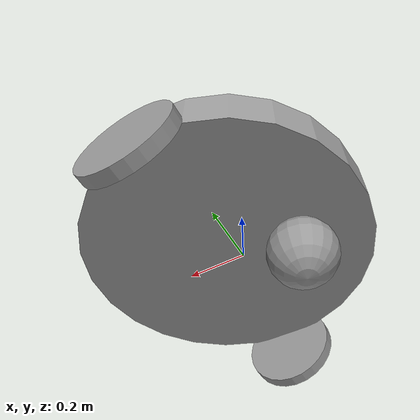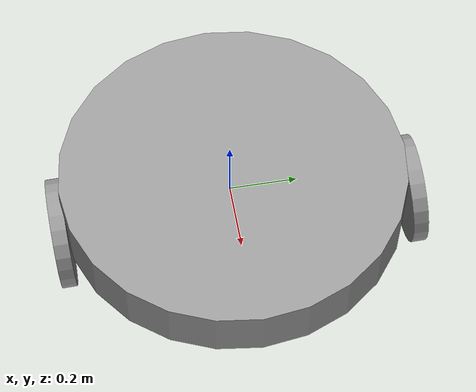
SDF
<?xml version='1.0'?>
<sdf version='1.6'>
  <model name='HumanoidRobot'>
    <link name='link_1'>
      <pose frame=''>0.063927 -0.510725 -0.011034 -1.52905 0 0</pose>
      <inertial>
        <mass>0.00453065</mass>
        <inertia>
          <ixx>2.98538e-05</ixx>
          <ixy>0</ixy>
          <ixz>0</ixz>
          <iyy>2.98538e-05</iyy>
          <iyz>0</iyz>
          <izz>5.8242e-05</izz>
        </inertia>
        <pose frame=''>0 0 0 0 -0 0</pose>
      </inertial>
      <visual name='visual'>
        <pose frame=''>0 0 0 0 -0 0</pose>
        <geometry>
          <cylinder>
            <radius>0.160417</radius>
            <length>0.0440566</length>
          </cylinder>
        </geometry>
        <material>
          <lighting>1</lighting>
          <script>
            <uri>file://media/materials/scripts/gazebo.material</uri>
            <name>Gazebo/Grey</name>
          </script>
          <ambient>0.3 0.3 0.3 1</ambient>
          <diffuse>0.7 0.7 0.7 1</diffuse>
          <specular>0.01 0.01 0.01 1</specular>
          <emissive>0 0 0 1</emissive>
        </material>
        <transparency>0</transparency>
        <cast_shadows>1</cast_shadows>
      </visual>
      <collision name='collision'>
        <laser_retro>0</laser_retro>
        <max_contacts>10</max_contacts>
        <pose frame=''>0 0 0 0 -0 0</pose>
        <geometry>
          <cylinder>
            <radius>0.160417</radius>
            <length>0.044057</length>
          </cylinder>
        </geometry>
        <surface>
          <friction>
            <ode>
              <mu>1</mu>
              <mu2>1</mu2>
              <fdir1>0 0 0</fdir1>
              <slip1>0</slip1>
              <slip2>0</slip2>
            </ode>
            <torsional>
              <coefficient>1</coefficient>
              <patch_radius>0</patch_radius>
              <surface_radius>0</surface_radius>
              <use_patch_radius>1</use_patch_radius>
              <ode>
                <slip>0</slip>
              </ode>
            </torsional>
          </friction>
          <bounce>
            <restitution_coefficient>0</restitution_coefficient>
            <threshold>1e+06</threshold>
          </bounce>
          <contact>
            <collide_without_contact>0</collide_without_contact>
            <collide_without_contact_bitmask>1</collide_without_contact_bitmask>
            <collide_bitmask>1</collide_bitmask>
            <ode>
              <soft_cfm>0</soft_cfm>
              <soft_erp>0.2</soft_erp>
              <kp>1e+13</kp>
              <kd>1</kd>
              <max_vel>0.01</max_vel>
              <min_depth>0</min_depth>
            </ode>
            <bullet>
              <split_impulse>1</split_impulse>
              <split_impulse_penetration_threshold>-0.01</split_impulse_penetration_threshold>
              <soft_cfm>0</soft_cfm>
              <soft_erp>0.2</soft_erp>
              <kp>1e+13</kp>
              <kd>1</kd>
            </bullet>
          </contact>
        </surface>
      </collision>
    </link>
    <link name='link_1_clone'>
      <pose frame=''>0.068071 0.531161 -0.031138 -1.52905 0 0</pose>
      <inertial>
        <mass>0.00453065</mass>
        <inertia>
          <ixx>2.98538e-05</ixx>
          <ixy>0</ixy>
          <ixz>0</ixz>
          <iyy>2.98538e-05</iyy>
          <iyz>0</iyz>
          <izz>5.8242e-05</izz>
        </inertia>
        <pose frame=''>0 0 0 0 -0 0</pose>
      </inertial>
      <visual name='visual'>
        <pose frame=''>0 0 0 0 -0 0</pose>
        <geometry>
          <cylinder>
            <radius>0.160417</radius>
            <length>0.0440566</length>
          </cylinder>
        </geometry>
        <material>
          <lighting>1</lighting>
          <script>
            <uri>file://media/materials/scripts/gazebo.material</uri>
            <name>Gazebo/Grey</name>
          </script>
          <ambient>0.3 0.3 0.3 1</ambient>
          <diffuse>0.7 0.7 0.7 1</diffuse>
          <specular>0.01 0.01 0.01 1</specular>
          <emissive>0 0 0 1</emissive>
          <shader type='pixel'/>
        </material>
        <transparency>0</transparency>
        <cast_shadows>1</cast_shadows>
      </visual>
      <collision name='collision'>
        <laser_retro>0</laser_retro>
        <max_contacts>10</max_contacts>
        <pose frame=''>0 0 0 0 -0 0</pose>
        <geometry>
          <cylinder>
            <radius>0.160417</radius>
            <length>0.044057</length>
          </cylinder>
        </geometry>
        <surface>
          <friction>
            <ode>
              <mu>1</mu>
              <mu2>1</mu2>
              <fdir1>0 0 0</fdir1>
              <slip1>0</slip1>
              <slip2>0</slip2>
            </ode>
            <torsional>
              <coefficient>1</coefficient>
              <patch_radius>0</patch_radius>
              <surface_radius>0</surface_radius>
              <use_patch_radius>1</use_patch_radius>
              <ode>
                <slip>0</slip>
              </ode>
            </torsional>
          </friction>
          <bounce>
            <restitution_coefficient>0</restitution_coefficient>
            <threshold>1e+06</threshold>
          </bounce>
          <contact>
            <collide_without_contact>0</collide_without_contact>
            <collide_without_contact_bitmask>1</collide_without_contact_bitmask>
            <collide_bitmask>1</collide_bitmask>
            <ode>
              <soft_cfm>0</soft_cfm>
              <soft_erp>0.2</soft_erp>
              <kp>1e+13</kp>
              <kd>1</kd>
              <max_vel>0.01</max_vel>
              <min_depth>0</min_depth>
            </ode>
            <bullet>
              <split_impulse>1</split_impulse>
              <split_impulse_penetration_threshold>-0.01</split_impulse_penetration_threshold>
              <soft_cfm>0</soft_cfm>
              <soft_erp>0.2</soft_erp>
              <kp>1e+13</kp>
              <kd>1</kd>
            </bullet>
          </contact>
        </surface>
      </collision>
    </link>
    <link name='link_2'>
      <pose frame=''>0.062909 -0.001806 0.119694 0 -0 0</pose>
      <inertial>
        <mass>0.158275</mass>
        <inertia>
          <ixx>0.0102226</ixx>
          <ixy>0</ixy>
          <ixz>0</ixz>
          <iyy>0.0102226</iyy>
          <iyz>0</iyz>
          <izz>0.0197843</izz>
        </inertia>
        <pose frame=''>0 0 0 0 -0 0</pose>
      </inertial>
      <visual name='visual'>
        <pose frame=''>0 0 0 0 -0 0</pose>
        <geometry>
          <cylinder>
            <radius>0.5</radius>
            <length>0.158276</length>
          </cylinder>
        </geometry>
        <material>
          <lighting>1</lighting>
          <script>
            <uri>file://media/materials/scripts/gazebo.material</uri>
            <name>Gazebo/Grey</name>
          </script>
          <ambient>0.3 0.3 0.3 1</ambient>
          <diffuse>0.7 0.7 0.7 1</diffuse>
          <specular>0.01 0.01 0.01 1</specular>
          <emissive>0 0 0 1</emissive>
        </material>
        <transparency>0</transparency>
        <cast_shadows>1</cast_shadows>
      </visual>
      <collision name='collision'>
        <laser_retro>0</laser_retro>
        <max_contacts>10</max_contacts>
        <pose frame=''>0 0 0 0 -0 0</pose>
        <geometry>
          <cylinder>
            <radius>0.5</radius>
            <length>0.158276</length>
          </cylinder>
        </geometry>
        <surface>
          <friction>
            <ode>
              <mu>1</mu>
              <mu2>1</mu2>
              <fdir1>0 0 0</fdir1>
              <slip1>0</slip1>
              <slip2>0</slip2>
            </ode>
            <torsional>
              <coefficient>1</coefficient>
              <patch_radius>0</patch_radius>
              <surface_radius>0</surface_radius>
              <use_patch_radius>1</use_patch_radius>
              <ode>
                <slip>0</slip>
              </ode>
            </torsional>
          </friction>
          <bounce>
            <restitution_coefficient>0</restitution_coefficient>
            <threshold>1e+06</threshold>
          </bounce>
          <contact>
            <collide_without_contact>0</collide_without_contact>
            <collide_without_contact_bitmask>1</collide_without_contact_bitmask>
            <collide_bitmask>1</collide_bitmask>
            <ode>
              <soft_cfm>0</soft_cfm>
              <soft_erp>0.2</soft_erp>
              <kp>1e+13</kp>
              <kd>1</kd>
              <max_vel>0.01</max_vel>
              <min_depth>0</min_depth>
            </ode>
            <bullet>
              <split_impulse>1</split_impulse>
              <split_impulse_penetration_threshold>-0.01</split_impulse_penetration_threshold>
              <soft_cfm>0</soft_cfm>
              <soft_erp>0.2</soft_erp>
              <kp>1e+13</kp>
              <kd>1</kd>
            </bullet>
          </contact>
        </surface>
      </collision>
    </link>
    <link name='link_3'>
      <pose frame=''>-0.194906 -0.018631 -0.077522 0 -0 0</pose>
      <inertial>
        <mass>0.0120019</mass>
        <inertia>
          <ixx>6.29143e-05</ixx>
          <ixy>0</ixy>
          <ixz>0</ixz>
          <iyy>6.29143e-05</iyy>
          <iyz>0</iyz>
          <izz>6.29143e-05</izz>
        </inertia>
        <pose frame=''>0 0 0 0 -0 0</pose>
      </inertial>
      <visual name='visual'>
        <pose frame=''>0 0 0 0 -0 0</pose>
        <geometry>
          <sphere>
            <radius>0.114487</radius>
          </sphere>
        </geometry>
        <material>
          <lighting>1</lighting>
          <script>
            <uri>file://media/materials/scripts/gazebo.material</uri>
            <name>Gazebo/Grey</name>
          </script>
          <ambient>0.3 0.3 0.3 1</ambient>
          <diffuse>0.7 0.7 0.7 1</diffuse>
          <specular>0.01 0.01 0.01 1</specular>
          <emissive>0 0 0 1</emissive>
        </material>
        <transparency>0</transparency>
        <cast_shadows>1</cast_shadows>
      </visual>
      <collision name='collision'>
        <laser_retro>0</laser_retro>
        <max_contacts>10</max_contacts>
        <pose frame=''>0 0 0 0 -0 0</pose>
        <geometry>
          <sphere>
            <radius>0.114487</radius>
          </sphere>
        </geometry>
        <surface>
          <friction>
            <ode>
              <mu>1</mu>
              <mu2>1</mu2>
              <fdir1>0 0 0</fdir1>
              <slip1>0</slip1>
              <slip2>0</slip2>
            </ode>
            <torsional>
              <coefficient>1</coefficient>
              <patch_radius>0</patch_radius>
              <surface_radius>0</surface_radius>
              <use_patch_radius>1</use_patch_radius>
              <ode>
                <slip>0</slip>
              </ode>
            </torsional>
          </friction>
          <bounce>
            <restitution_coefficient>0</restitution_coefficient>
            <threshold>1e+06</threshold>
          </bounce>
          <contact>
            <collide_without_contact>0</collide_without_contact>
            <collide_without_contact_bitmask>1</collide_without_contact_bitmask>
            <collide_bitmask>1</collide_bitmask>
            <ode>
              <soft_cfm>0</soft_cfm>
              <soft_erp>0.2</soft_erp>
              <kp>1e+13</kp>
              <kd>1</kd>
              <max_vel>0.01</max_vel>
              <min_depth>0</min_depth>
            </ode>
            <bullet>
              <split_impulse>1</split_impulse>
              <split_impulse_penetration_threshold>-0.01</split_impulse_penetration_threshold>
              <soft_cfm>0</soft_cfm>
              <soft_erp>0.2</soft_erp>
              <kp>1e+13</kp>
              <kd>1</kd>
            </bullet>
          </contact>
        </surface>
      </collision>
    </link>
    <joint name='link_2_JOINT_0' type='revolute'>
      <parent>link_2</parent>
      <child>link_1_clone</child>
      <pose frame=''>0 0 0 0 -0 0</pose>
      <axis>
        <xyz>1 0 0</xyz>
        <use_parent_model_frame>0</use_parent_model_frame>
        <limit>
          <lower>-1.79769e+308</lower>
          <upper>1.79769e+308</upper>
          <effort>-1</effort>
          <velocity>-1</velocity>
        </limit>
        <dynamics>
          <spring_reference>0</spring_reference>
          <spring_stiffness>0</spring_stiffness>
          <damping>0</damping>
        </dynamics>
      </axis>
      <physics>
        <ode>
          <limit>
            <cfm>0</cfm>
            <erp>0.2</erp>
          </limit>
          <suspension>
            <cfm>0</cfm>
            <erp>0.2</erp>
          </suspension>
        </ode>
      </physics>
    </joint>
    <joint name='link_2_JOINT_1' type='revolute'>
      <parent>link_2</parent>
      <child>link_1</child>
      <pose frame=''>0 0 0 0 -0 0</pose>
      <axis>
        <xyz>1 0 0</xyz>
        <use_parent_model_frame>0</use_parent_model_frame>
        <limit>
          <lower>-1.79769e+308</lower>
          <upper>1.79769e+308</upper>
          <effort>-1</effort>
          <velocity>-1</velocity>
        </limit>
        <dynamics>
          <spring_reference>0</spring_reference>
          <spring_stiffness>0</spring_stiffness>
          <damping>0</damping>
        </dynamics>
      </axis>
      <physics>
        <ode>
          <limit>
            <cfm>0</cfm>
            <erp>0.2</erp>
          </limit>
          <suspension>
            <cfm>0</cfm>
            <erp>0.2</erp>
          </suspension>
        </ode>
      </physics>
    </joint>
    <joint name='link_2_JOINT_2' type='revolute'>
      <parent>link_2</parent>
      <child>link_3</child>
      <pose frame=''>0 0 0 0 -0 0</pose>
      <axis>
        <xyz>1 0 0</xyz>
        <use_parent_model_frame>0</use_parent_model_frame>
        <limit>
          <lower>-1.79769e+308</lower>
          <upper>1.79769e+308</upper>
          <effort>-1</effort>
          <velocity>-1</velocity>
        </limit>
        <dynamics>
          <spring_reference>0</spring_reference>
          <spring_stiffness>0</spring_stiffness>
          <damping>0</damping>
        </dynamics>
      </axis>
      <physics>
        <ode>
          <limit>
            <cfm>0</cfm>
            <erp>0.2</erp>
          </limit>
          <suspension>
            <cfm>0</cfm>
            <erp>0.2</erp>
          </suspension>
        </ode>
      </physics>
    </joint>
    <static>0</static>
    <allow_auto_disable>1</allow_auto_disable>
  </model>
</sdf>
